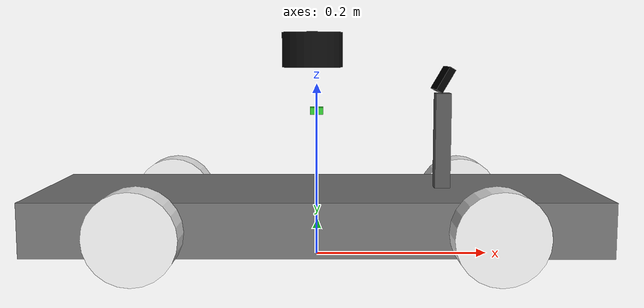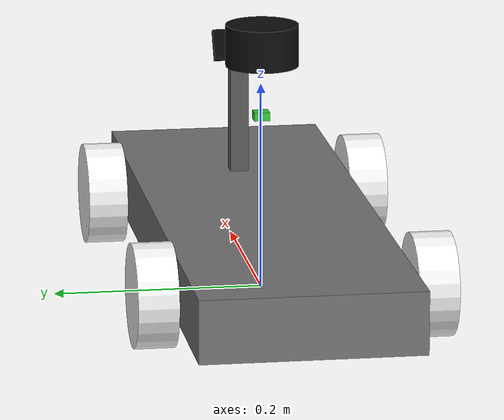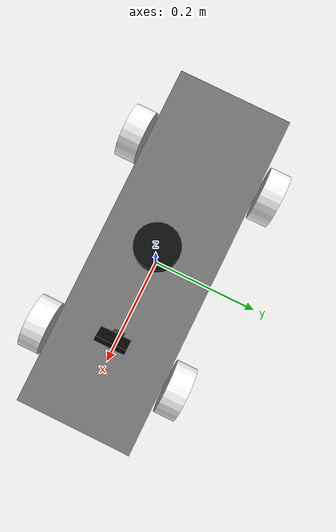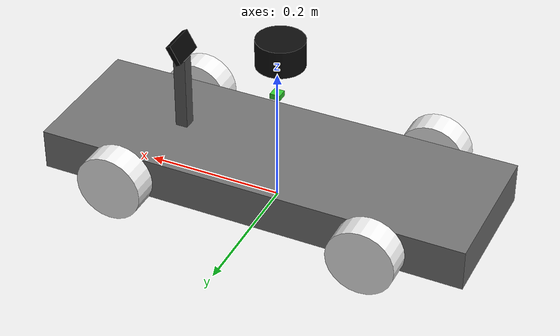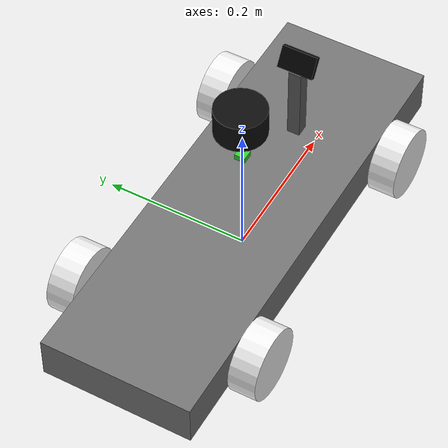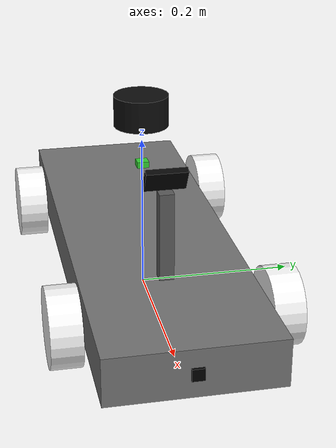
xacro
<?xml version="1.0"?>
<robot xmlns:xacro="http://www.ros.org/wiki/xacro" name="rc_1_7_lidar">
    <xacro:arg name="use_ros2_control" default="true"/>
    <xacro:arg name="controllers_file" default=""/>
    <xacro:arg name="lidar_samples" default="720"/>
    <xacro:arg name="lidar_rate_hz" default="10"/>

    <xacro:include filename="$(find rc_description)/urdf/rc_1_7.urdf.xacro"/>

    <link name="laser">
        <visual>
            <geometry>
                <cylinder radius="0.035" length="0.04"/>
            </geometry>
            <material name="lidar_black">
                <color rgba="0.05 0.05 0.05 1.0"/>
            </material>
        </visual>
        <inertial>
            <mass value="0.01"/>
            <inertia ixx="1e-6" ixy="0" ixz="0" iyy="1e-6" iyz="0" izz="1e-6"/>
        </inertial>
    </link>

    <joint name="laser_joint" type="fixed">
        <parent link="base_link"/>
        <child link="laser"/>
        <origin xyz="-0.005 0 0.190" rpy="0 0 0"/>
    </joint>

    <gazebo reference="laser">
        <material>Gazebo/Black</material>
        <sensor name="rplidar_a1" type="ray">
            <always_on>true</always_on>
            <visualize>true</visualize>
            <update_rate>$(arg lidar_rate_hz)</update_rate>
            <pose>0 0 0 0 0 0</pose>
            <ray>
                <scan>
                    <horizontal>
                        <samples>$(arg lidar_samples)</samples>
                        <resolution>1</resolution>
                        <min_angle>-3.14159265</min_angle>
                        <max_angle>3.14159265</max_angle>
                    </horizontal>
                </scan>
                <range>
                    <min>0.15</min>
                    <max>12.0</max>
                    <resolution>0.01</resolution>
                </range>
                <noise>
                    <type>gaussian</type>
                    <mean>0.0</mean>
                    <stddev>0.005</stddev>
                </noise>
            </ray>
            <plugin name="rplidar_a1_driver" filename="libgazebo_ros_ray_sensor.so">
                <ros>
                    <remapping>~/out:=/scan</remapping>
                </ros>
                <output_type>sensor_msgs/LaserScan</output_type>
                <frame_name>laser</frame_name>
            </plugin>
        </sensor>
    </gazebo>
</robot>

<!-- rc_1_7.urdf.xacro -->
<robot xmlns:xacro="http://www.ros.org/wiki/xacro" name="rc_1_7">

    <xacro:arg name="use_ros2_control" default="false"/>
    <xacro:arg name="controllers_file" default=""/>

    <!-- ================================================================
         Vehicle Geometry (1/7 scale measured values)
         ================================================================ -->
    <xacro:property name="wheelbase"             value="0.375"/>
    <xacro:property name="track_width"           value="0.260"/>
    <xacro:property name="half_track"            value="0.130"/>
    <xacro:property name="wheel_radius"          value="0.049"/>
    <xacro:property name="wheel_width"           value="0.038"/>
    <xacro:property name="vehicle_length"        value="0.632"/>
    <xacro:property name="vehicle_width"         value="0.210"/>
    <xacro:property name="vehicle_height"        value="0.237"/>
    <xacro:property name="total_mass"            value="6.5"/>
    <xacro:property name="base_link_z"           value="${wheel_radius}"/>

    <!-- Collision geometry (simple primitives) -->
    <xacro:property name="chassis_length"        value="0.56"/>
    <xacro:property name="chassis_width"         value="0.18"/>
    <xacro:property name="chassis_height"        value="0.06"/>
    <xacro:property name="cage_length"           value="0.20"/>
    <xacro:property name="cage_width"            value="0.18"/>
    <xacro:property name="cage_height"           value="0.14"/>
    <xacro:property name="control_length"        value="0.20"/>
    <xacro:property name="control_width"         value="0.14"/>
    <xacro:property name="control_height"        value="0.03"/>
    <xacro:property name="steering_col_size"     value="0.04"/>

    <!-- Mass distribution (sums to 6.5 kg)
         base=4.789, cage=0.6, control=0.2, steering=0.08×2, wheel=0.18×4,
         imu=0.001, camera=0.03 → 4.789+0.6+0.2+0.16+0.72+0.001+0.03 = 6.500 -->
    <xacro:property name="mass_base"             value="4.789"/>
    <xacro:property name="mass_cage"             value="0.600"/>
    <xacro:property name="mass_control"          value="0.200"/>
    <xacro:property name="mass_steering"         value="0.080"/>
    <xacro:property name="mass_wheel"            value="0.180"/>
    <xacro:property name="mass_imu"              value="0.001"/>
    <!-- Verify: 4.5 + 0.6 + 0.2 + 2*0.08 + 4*0.18 + 0.001 = 6.501 ≈ 6.5 -->

    <material name="car_black">
        <color rgba="0.0 0.0 0.0 1.0"/>
    </material>
    <material name="chassis_gray">
        <color rgba="0.45 0.45 0.45 1.0"/>
    </material>
    <material name="wheel_white">
        <color rgba="0.95 0.95 0.95 1.0"/>
    </material>
    <material name="support_gray">
        <color rgba="0.35 0.35 0.35 1.0"/>
    </material>
    <material name="camera_black_material">
        <color rgba="0.02 0.02 0.02 1.0"/>
    </material>

    <!-- ================================================================
         Inertial Macros
         ================================================================ -->
    <xacro:macro name="box_inertial" params="mass x y z">
        <inertial>
            <mass value="${mass}"/>
            <origin xyz="0 0 0" rpy="0 0 0"/>
            <inertia ixx="${(1/12)*mass*(y*y + z*z)}"
                     ixy="0" ixz="0"
                     iyy="${(1/12)*mass*(x*x + z*z)}"
                     iyz="0"
                     izz="${(1/12)*mass*(x*x + y*y)}"/>
        </inertial>
    </xacro:macro>

    <!-- Cylinder with axis along Y (wheel rolling axis).
         URDF cylinder axis is Z; rpy="${pi/2} 0 0" rotates Z->Y. -->
    <xacro:macro name="cylinder_inertial_y" params="mass radius length">
        <inertial>
            <mass value="${mass}"/>
            <origin xyz="0 0 0" rpy="${pi/2} 0 0"/>
            <inertia ixx="${(1/12)*mass*(3*radius*radius + length*length)}"
                     ixy="0" ixz="0"
                     iyy="${0.5*mass*radius*radius}"
                     iyz="0"
                     izz="${(1/12)*mass*(3*radius*radius + length*length)}"/>
        </inertial>
    </xacro:macro>

    <xacro:macro name="front_steering_assembly" params="side x_pos y_pos">
        <link name="front_${side}_steering_link">
            <visual>
                <origin rpy="0 0 0" xyz="0 0 0"/>
                <geometry>
                    <cylinder length="0.012" radius="0.006"/>
                </geometry>
                <material name="car_black"/>
            </visual>
            <collision>
                <origin rpy="0 0 0" xyz="0 0 0"/>
                <geometry>
                    <box size="${steering_col_size} ${steering_col_size} ${steering_col_size}"/>
                </geometry>
            </collision>
            <xacro:box_inertial mass="${mass_steering}"
                                x="${steering_col_size}"
                                y="${steering_col_size}"
                                z="${steering_col_size}"/>
        </link>

        <gazebo reference="front_${side}_steering_link">
            <material>Gazebo/Black</material>
        </gazebo>

        <joint name="front_${side}_steering_joint" type="revolute">
            <parent link="base_link"/>
            <child link="front_${side}_steering_link"/>
            <axis xyz="0 0 1"/>
            <limit lower="-0.6" upper="0.6" effort="50" velocity="5.0"/>
            <dynamics damping="0.1" friction="0.0"/>
            <origin rpy="0 0 0" xyz="${x_pos} ${y_pos} 0"/>
        </joint>

        <!-- Wheel: cylinder visual along Y axis -->
        <link name="front_${side}_wheel_link">
            <visual>
                <origin rpy="${pi/2} 0 0" xyz="0 0 0"/>
                <geometry>
                    <cylinder radius="${wheel_radius}" length="${wheel_width}"/>
                </geometry>
                <material name="wheel_white"/>
            </visual>
            <collision>
                <origin rpy="${pi/2} 0 0" xyz="0 0 0"/>
                <geometry>
                    <cylinder radius="${wheel_radius}" length="${wheel_width}"/>
                </geometry>
            </collision>
            <xacro:cylinder_inertial_y mass="${mass_wheel}"
                                       radius="${wheel_radius}"
                                       length="${wheel_width}"/>
        </link>

        <gazebo reference="front_${side}_wheel_link">
            <material>Gazebo/White</material>
        </gazebo>

        <joint name="front_${side}_wheel_joint" type="continuous">
            <parent link="front_${side}_steering_link"/>
            <child link="front_${side}_wheel_link"/>
            <axis xyz="0 1 0"/>
            <dynamics damping="0.02" friction="0.0"/>
            <origin rpy="0 0 0" xyz="0 0 0"/>
        </joint>
    </xacro:macro>

    <xacro:macro name="rear_wheel_assembly" params="side x_pos y_pos">
        <link name="rear_${side}_wheel_link">
            <visual>
                <origin rpy="${pi/2} 0 0" xyz="0 0 0"/>
                <geometry>
                    <cylinder radius="${wheel_radius}" length="${wheel_width}"/>
                </geometry>
                <material name="wheel_white"/>
            </visual>
            <collision>
                <origin rpy="${pi/2} 0 0" xyz="0 0 0"/>
                <geometry>
                    <cylinder radius="${wheel_radius}" length="${wheel_width}"/>
                </geometry>
            </collision>
            <xacro:cylinder_inertial_y mass="${mass_wheel}"
                                       radius="${wheel_radius}"
                                       length="${wheel_width}"/>
        </link>

        <gazebo reference="rear_${side}_wheel_link">
            <material>Gazebo/White</material>
        </gazebo>

        <joint name="rear_${side}_wheel_joint" type="continuous">
            <parent link="base_link"/>
            <child link="rear_${side}_wheel_link"/>
            <axis xyz="0 1 0"/>
            <dynamics damping="0.02" friction="0.0"/>
            <origin rpy="0 0 0" xyz="${x_pos} ${y_pos} 0"/>
        </joint>
    </xacro:macro>

    <!-- ================================================================
         Base Links
         ================================================================ -->
    <link name="base_footprint"/>

    <link name="base_link">
        <!-- Chassis body: box primitive -->
        <visual>
            <origin rpy="0 0 0" xyz="0 0 0"/>
            <geometry>
                <box size="${vehicle_length} ${vehicle_width} ${chassis_height}"/>
            </geometry>
            <material name="chassis_gray"/>
        </visual>
        <!-- Camera support bracket: small vertical post from chassis top toward camera -->
        <visual name="camera_support_visual">
            <origin xyz="0.146 0 0.08" rpy="0 0 0"/>
            <geometry>
                <box size="0.018 0.018 0.12"/>
            </geometry>
            <material name="support_gray"/>
        </visual>
        <collision>
            <origin xyz="0 0 ${chassis_height/2}" rpy="0 0 0"/>
            <geometry>
                <box size="${chassis_length} ${chassis_width} ${chassis_height}"/>
            </geometry>
        </collision>
        <xacro:box_inertial mass="${mass_base}"
                            x="${chassis_length}"
                            y="${chassis_width}"
                            z="${chassis_height}"/>
    </link>

    <gazebo reference="base_link">
        <material>Gazebo/Grey</material>
    </gazebo>

    <joint name="base_joint" type="fixed">
        <parent link="base_footprint"/>
        <child link="base_link"/>
        <origin rpy="0 0 0" xyz="0 0 ${base_link_z}"/>
    </joint>

    <!-- ================================================================
         Control Layer (electronics plate)
         ================================================================ -->
    <link name="control_layer_link">
        <collision>
            <origin xyz="0 0 0" rpy="0 0 0"/>
            <geometry>
                <box size="${control_length} ${control_width} ${control_height}"/>
            </geometry>
        </collision>
        <xacro:box_inertial mass="${mass_control}"
                            x="${control_length}"
                            y="${control_width}"
                            z="${control_height}"/>
    </link>

        <joint name="control_layer_joint" type="fixed">
        <parent link="base_link"/>
        <child link="control_layer_link"/>
        <origin rpy="0 0 0" xyz="0.01 0 0.07"/>
    </joint>

    <!-- ================================================================
         Roll Cage
         ================================================================ -->
    <link name="cage_link">
        <collision>
            <origin xyz="0 0 0" rpy="0 0 0"/>
            <geometry>
                <box size="${cage_length} ${cage_width} ${cage_height}"/>
            </geometry>
        </collision>
        <xacro:box_inertial mass="${mass_cage}"
                            x="${cage_length}"
                            y="${cage_width}"
                            z="${cage_height}"/>
    </link>

    <joint name="cage_joint" type="fixed">
        <parent link="base_link"/>
        <child link="cage_link"/>
        <origin rpy="0 0 0" xyz="0.18 -0.06 0.07"/>
    </joint>

    <!-- ================================================================
         Front Direction Marker (debug only)
         ================================================================ -->
    <link name="front_marker_link">
        <visual>
            <origin rpy="0 0 0" xyz="0 0 0"/>
            <geometry>
                <box size="0.08 0.015 0.015"/>
            </geometry>
            <material name="car_black"/>
        </visual>
    </link>

    <gazebo reference="front_marker_link">
        <material>Gazebo/Black</material>
    </gazebo>

    <joint name="front_marker_joint" type="fixed">
        <parent link="base_link"/>
        <child link="front_marker_link"/>
        <origin rpy="0 0 0" xyz="0.28 0 0"/>
    </joint>

    <!-- ================================================================
         Wheel Assemblies
         ================================================================ -->
    <xacro:front_steering_assembly side="left"
                                   x_pos="${wheelbase/2}"
                                   y_pos="${track_width/2}"/>

    <xacro:front_steering_assembly side="right"
                                   x_pos="${wheelbase/2}"
                                   y_pos="${-track_width/2}"/>

    <xacro:rear_wheel_assembly side="left"
                               x_pos="${-wheelbase/2}"
                               y_pos="${track_width/2}"/>

    <xacro:rear_wheel_assembly side="right"
                               x_pos="${-wheelbase/2}"
                               y_pos="${-track_width/2}"/>

    <!-- ================================================================
         IMU Link
         Tiny mass, negligible inertia.
         ================================================================ -->
    <link name="imu_link">
        <visual>
            <origin rpy="0 0 0" xyz="0 0 0"/>
            <geometry>
                <box size="0.015 0.015 0.008"/>
            </geometry>
            <material name="green">
                <color rgba="0.2 0.8 0.2 1.0"/>
            </material>
        </visual>
        <inertial>
            <mass value="${mass_imu}"/>
            <origin xyz="0 0 0" rpy="0 0 0"/>
            <inertia ixx="1e-8" ixy="0" ixz="0" iyy="1e-8" iyz="0" izz="1e-8"/>
        </inertial>
    </link>

    <joint name="imu_joint" type="fixed">
        <parent link="base_link"/>
        <child link="imu_link"/>
        <origin rpy="0 0 0" xyz="0 0 0.12"/>
    </joint>

    <link name="camera_link">
        <visual>
            <origin rpy="0 0 0" xyz="0 0 0"/>
            <geometry>
                <box size="0.008 0.05 0.03"/>
            </geometry>
            <material name="camera_black_material"/>
        </visual>

        <collision>
            <origin rpy="0 0 0" xyz="0 0 0"/>
            <geometry>
                <box size="0.008 0.05 0.03"/>
            </geometry>
        </collision>

        <inertial>
            <mass value="0.03"/>
            <origin xyz="0 0 0" rpy="0 0 0"/>
            <inertia ixx="1e-6" ixy="0" ixz="0" iyy="1e-6" iyz="0" izz="1e-6"/>
        </inertial>
    </link>

    <joint name="camera_joint" type="fixed">
        <parent link="base_link"/>
        <child link="camera_link"/>
        <origin rpy="0 0.5236 0" xyz="0.146 0 0.156"/>
    </joint>

    <!-- ROS optical convention: +Z forward, +X right, +Y down. -->
    <link name="camera_optical_frame"/>
    <joint name="camera_optical_joint" type="fixed">
        <parent link="camera_link"/>
        <child link="camera_optical_frame"/>
        <origin xyz="0 0 0" rpy="${-pi/2} 0 ${-pi/2}"/>
    </joint>

    <gazebo reference="camera_link">
        <sensor name="front_camera" type="camera">
            <always_on>true</always_on>
            <update_rate>30</update_rate>
            <camera>
                <horizontal_fov>1.3962634</horizontal_fov>
                <image>
                    <width>640</width>
                    <height>480</height>
                    <format>R8G8B8</format>
                </image>
                <clip>
                    <near>0.02</near>
                    <far>50.0</far>
                </clip>
            </camera>
            <plugin name="front_camera_controller" filename="libgazebo_ros_camera.so">
                <ros>
                    <namespace>/camera</namespace>
                    <remapping>image_raw:=image_raw</remapping>
                    <remapping>camera_info:=camera_info</remapping>
                </ros>
                <frame_name>camera_optical_frame</frame_name>
            </plugin>
        </sensor>
    </gazebo>

    <!-- ================================================================
         ros2_control Hardware Interface
         ================================================================ -->
    <xacro:if value="$(arg use_ros2_control)">
        <ros2_control name="rc_car_hardware" type="system">
            <hardware>
                <plugin>gazebo_ros2_control/GazeboSystem</plugin>
            </hardware>

            <joint name="front_left_steering_joint">
                <command_interface name="position"/>
                <state_interface name="position"/>
                <state_interface name="velocity"/>
            </joint>
            <joint name="front_right_steering_joint">
                <command_interface name="position"/>
                <state_interface name="position"/>
                <state_interface name="velocity"/>
            </joint>

            <joint name="rear_left_wheel_joint">
                <command_interface name="velocity"/>
                <state_interface name="position"/>
                <state_interface name="velocity"/>
            </joint>
            <joint name="rear_right_wheel_joint">
                <command_interface name="velocity"/>
                <state_interface name="position"/>
                <state_interface name="velocity"/>
            </joint>

            <joint name="front_left_wheel_joint">
                <state_interface name="position"/>
                <state_interface name="velocity"/>
            </joint>
            <joint name="front_right_wheel_joint">
                <state_interface name="position"/>
                <state_interface name="velocity"/>
            </joint>
        </ros2_control>

        <gazebo>
            <plugin filename="libgazebo_ros2_control.so" name="gazebo_ros2_control">
                <parameters>$(arg controllers_file)</parameters>
            </plugin>
        </gazebo>
    </xacro:if>

    <!-- ================================================================
         Gazebo Classic Ground Truth
         ================================================================ -->
    <gazebo>
        <plugin filename="libgazebo_ros_p3d.so" name="ground_truth_p3d">
            <ros>
                <remapping>odom:=/ground_truth/odom</remapping>
            </ros>
            <body_name>base_footprint</body_name>
            <update_rate>20.0</update_rate>
            <gaussian_noise>0.0</gaussian_noise>
        </plugin>
    </gazebo>

    <!-- ================================================================
         Gazebo Classic IMU Sensor
         ================================================================ -->
    <gazebo reference="imu_link">
        <sensor name="imu_sensor" type="imu">
            <always_on>true</always_on>
            <update_rate>100</update_rate>
            <pose>0 0 0 0 0 0</pose>
            <imu>
                <noise type="gaussian">
                    <rate>
                        <mean>0.0</mean>
                        <stddev>0.002</stddev>
                    </rate>
                    <accel>
                        <mean>0.0</mean>
                        <stddev>0.02</stddev>
                    </accel>
                </noise>
            </imu>
            <plugin filename="libgazebo_ros_imu_sensor.so" name="imu_sensor_plugin">
                <ros>
                    <namespace>/imu</namespace>
                    <remapping>~/out:=data</remapping>
                </ros>
                <frame_name>imu_link</frame_name>
            </plugin>
        </sensor>
    </gazebo>

</robot>
